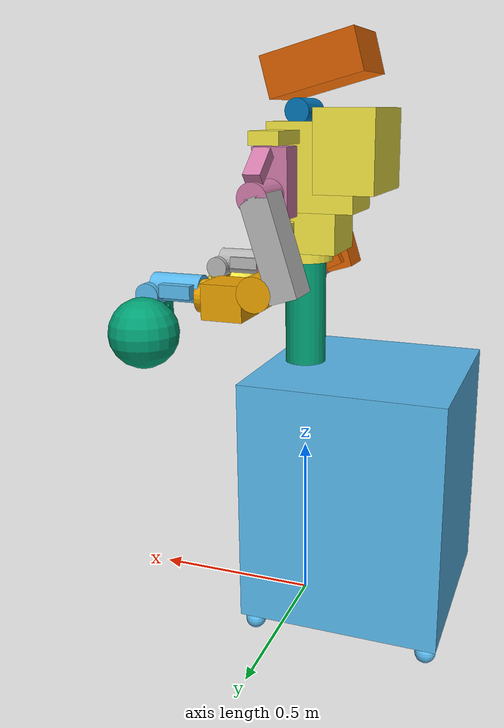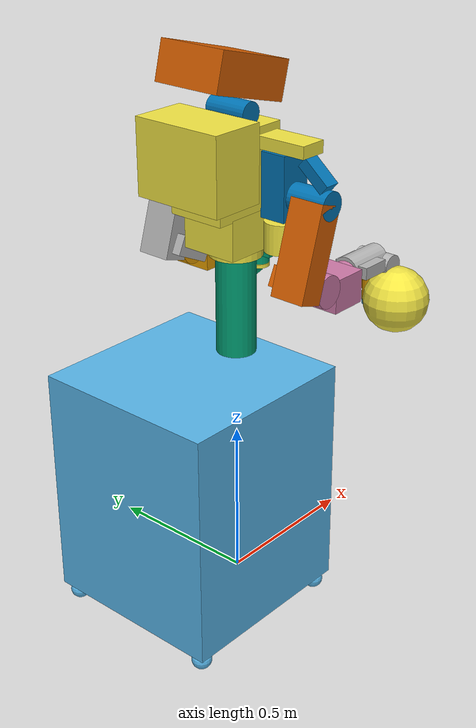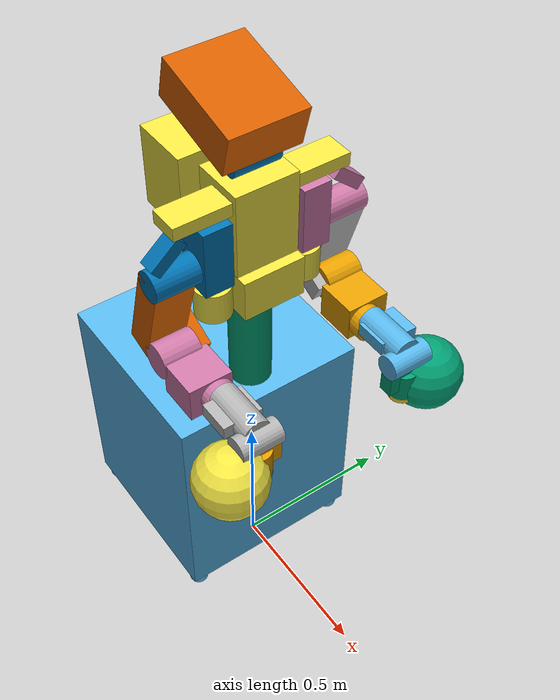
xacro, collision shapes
<?xml version="1.0"?>
<robot name="NextageAOpen"
       xmlns:xacro="http://www.ros.org/wiki/xacro">

  <xacro:property name="fixed_base" value="True" />
  <xacro:property name="ft_sensors" value="True" />
  <xacro:property name="hand_camera" value="True" />

  <xacro:include filename="$(find nextage_a_description)/urdf/NextageAOpen_gazebo.urdf.xacro" />

  <!-- Attach the Azure Kinect -->
  <joint name="kinct_mount_joint" type="fixed">
      <origin xyz="0.051 0.0 0.198" rpy="0.0 0.292 0.0" />
      <parent link="HEAD_JOINT1_Link"/>
      <child link="camera_base"/>
  </joint>
  <link name="camera_base"/>

</robot>

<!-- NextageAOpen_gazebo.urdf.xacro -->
<robot name="NextageAOpen"
       xmlns:xacro="http://www.ros.org/wiki/xacro">

  <xacro:property name="fixed_base" value="True" />

  <xacro:include filename="$(find nextage_a_description)/urdf/common.xacro" />
  <xacro:include filename="$(find nextage_a_description)/urdf/NextageAOpen.urdf.xacro" />

  <!-- Used for fixing robot to Gazebo 'base_link' -->
  <xacro:if value="${fixed_base}">
    <link name="world"/> -->
    <joint name="fixed" type="fixed">
      <parent link="world"/>
      <child link="base_link"/>
      <origin xyz="0 0 0.85" rpy="0 0 0"/>
    </joint>
  </xacro:if>

</robot>

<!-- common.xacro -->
<robot xmlns:xacro="http://ros.org/wiki/xacro">

    <xacro:property name="nextagea_common_guard" default="true"/>
    <xacro:if value="${nextagea_common_guard}">
        <xacro:property name="nextagea_common_guard" value="false"/>

        <!-- Inertia macros -->
        <xacro:macro name="nxa_sphere_inertia_def" params="radius mass">
            <inertia ixx="${2/5*mass*radius*radius}" ixy="0" ixz="0" iyy="${2/5*mass*radius*radius}" iyz="0" izz="${2/5*mass*radius*radius}"/>
        </xacro:macro>
        <xacro:macro name="nxa_box_inertia_def" params="x y z mass">
            <inertia iyy="${mass*(z*z+x*x)/12.0}" ixx="${mass*(y*y+z*z)/12.0}" izz="${mass*(x*x+y*y)/12.0}" ixy="0.0" iyz="0.0" ixz="0.0"/>
        </xacro:macro>
        <xacro:macro name="nxa_cylinder_inertia_def" params="r h mass">
            <inertia ixx="${mass*(3*r*r+h*h)/12}" ixy="0" ixz="0" iyy="${mass*(3*r*r+h*h)/12}" iyz="0" izz="${mass*r*r/2}"/>
        </xacro:macro>

        <xacro:macro name="transmission_nx_joint" params="name">
            <transmission name="${name}_Trans">
            <type>transmission_interface/SimpleTransmission</type>
            <joint name="${name}">
                <hardwareInterface>hardware_interface/PositionJointInterface</hardwareInterface>
            </joint>
            <actuator name="${name}_Motor">
                <hardwareInterface>hardware_interface/PositionJointInterface</hardwareInterface>
                <mechanicalReduction>1</mechanicalReduction>
            </actuator>
            </transmission>
        </xacro:macro>

        <!-- Define contact properties -->
        <xacro:macro name="gazebo_nx_link" params="name color">
            <gazebo reference="gazebo_${name}">
                <material>Gazebo/${color}</material>
                <mu1 value="1.0" />
                <mu2 value="1.0" />
                <kp  value="1e5" />
                <kd  value="1e2" />
                <maxVel  value="100.0" />
                <minDepth  value="0.0" />
                <dampingFactor>0.01</dampingFactor>
            </gazebo>
        </xacro:macro>

    </xacro:if>

    <xacro:macro name="sphere_inertia_def" params="radius mass">
        <inertia ixx="${2/5*mass*radius*radius}" ixy="0" ixz="0" iyy="${2/5*mass*radius*radius}" iyz="0" izz="${2/5*mass*radius*radius}"/>
    </xacro:macro>

</robot>

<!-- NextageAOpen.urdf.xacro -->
<robot name="NextageAOpen"
       xmlns:xi="http://www.w3.org/2001/xinclude"
       xmlns:gazebo="http://playerstage.sourceforge.net/gazebo/xmlschema/#gz"
       xmlns:model="http://playerstage.sourceforge.net/gazebo/xmlschema/#model"
       xmlns:sensor="http://playerstage.sourceforge.net/gazebo/xmlschema/#sensor"
       xmlns:body="http://playerstage.sourceforge.net/gazebo/xmlschema/#body"
       xmlns:geom="http://playerstage.sourceforge.net/gazebo/xmlschema/#geom"
       xmlns:joint="http://playerstage.sourceforge.net/gazebo/xmlschema/#joint"
       xmlns:interface="http://playerstage.sourceforge.net/gazebo/xmlschema/#interface"
       xmlns:rendering="http://playerstage.sourceforge.net/gazebo/xmlschema/#rendering"
       xmlns:renderable="http://playerstage.sourceforge.net/gazebo/xmlschema/#renderable"
       xmlns:controller="http://playerstage.sourceforge.net/gazebo/xmlschema/#controller"
       xmlns:physics="http://playerstage.sourceforge.net/gazebo/xmlschema/#physics"
       xmlns:xacro="http://www.ros.org/wiki/xacro">
  <xacro:include filename="$(find nextage_a_description)/urdf/materials.xacro" />
  <xacro:include filename="$(find nextage_a_description)/urdf/common.xacro" />

  <xacro:include filename="$(find nextage_a_description)/urdf/NextageA_base.xacro" />
  <xacro:include filename="$(find nextage_a_description)/urdf/NextageA_robot.xacro" />
  <xacro:include filename="$(find nextage_a_description)/urdf/nxao_gz_camera.xacro" />

  <xacro:arg name="use_hand_cameras" default="false"/>
  <xacro:arg name="use_ft_sensors" default="false"/>

  <xacro:macro name="nxao_camera" params="prefix parent">
    <xacro:if value="${prefix == 'L'}">
      <xacro:property name="m" value="+1" />
    </xacro:if>

    <xacro:if value="${prefix == 'R'}">
      <xacro:property name="m" value="-1" />
    </xacro:if>

    <xacro:gazebo_nx_link name="${prefix}ARM_camera_Link" color="Black" />
    <link name="${prefix}ARM_camera_Link">
      <visual>
        <origin xyz="0 0 0" rpy="0 0 0"/>
        <geometry>
          <mesh filename="package://nextage_a_description/urdf/meshes/${prefix}_CAM.dae"/>
        </geometry>
      </visual>
      <collision>
        <origin xyz="0 0 -0.025" rpy="0 0 0"/>
        <geometry>
          <cylinder length="0.05" radius="0.037"/>
        </geometry>
      </collision>
      <collision>
        <origin xyz="0.0525 ${m * 0.029} -0.02" rpy="0 0 0"/>
        <geometry>
          <box size="0.057 0.106 0.042"/>
        </geometry>
      </collision>
      <inertial>
        <mass value="1.05156" />
        <origin xyz="0.0 0.0 -0.08" rpy="0 -0 0"/>
        <inertia ixx="0.00194072" ixy="${m * 1.1e-07}" ixz="-0.00042482" iyy="0.00209392" iyz="${m * 1.2e-07}" izz="0.00035788"/>
      </inertial>
    </link>

    <joint name="${prefix}ARM_JOINT6" type="fixed">
      <parent link="${parent}"/>
      <child link="${prefix}ARM_camera_Link"/>
      <origin xyz="0 0 0" rpy="0 0 0"/>
      <axis xyz="0 0 1"/>
    </joint>

    <xacro:camera_joint_link_gzplugin
      camera_name="CAMERA_HAND_${prefix}" link_parent="${parent}"
      jnt_displacement_x="${jnt_hand_camera_displacement_x}"
      jnt_displacement_y="${m * jnt_hand_camera_displacement_y}"
      jnt_displacement_z="${jnt_hand_camera_displacement_z}"
      jnt_rotation_x="0" jnt_rotation_y="${jnt_hand_camera_rot_y}" jnt_rotation_z="0"
      link_displacement_x="0.0325" link_displacement_y="0" link_displacement_z="0"
      link_rotation_x="0" link_rotation_y="${M_PI/2}" link_rotation_z="-${link_hand_camera_rot_z}" />
  </xacro:macro>

  <xacro:macro name="nxao_ft_sensor" params="prefix parent">
    <xacro:if value="${prefix == 'L'}">
      <xacro:property name="m" value="+1" />
      <xacro:property name="ft_side" value="left" />
    </xacro:if>

    <xacro:if value="${prefix == 'R'}">
      <xacro:property name="m" value="-1" />
      <xacro:property name="ft_side" value="right" />
    </xacro:if>

    <xacro:gazebo_nx_link name="${prefix}ARM_ft_Link" color="LightGrey" />
    <link name="${prefix}ARM_ft_Link_base">
      <visual>
        <origin xyz="0 0 0.0185" rpy="0 0 0"/>
        <geometry>
          <cylinder length="0.037" radius="0.035"/>
        </geometry>
        <material name="LightGrey">
          <color rgba="0.6 0.6 0.6 1.0"/>
        </material>
      </visual>
      <collision>
        <origin xyz="0 0 0.0185" rpy="0 0 0"/>
        <geometry>
          <cylinder length="0.037" radius="0.04"/>
        </geometry>
      </collision>
      <!-- TODO: The inertial values are copied from ARM_JOINT5_Link. Replace with proper values. -->
      <inertial>
        <mass value="1.05156" />
        <origin xyz="0.0 0.0 -0.08" rpy="0 -0 0"/>
        <inertia ixx="0.00194072" ixy="1.1e-07" ixz="-0.00042482" iyy="0.00209392" iyz="1.2e-07" izz="0.00035788"/>
      </inertial>
    </link>

    <joint name="${prefix}ARM_ft_joint" type="fixed">
      <parent link="${parent}"/>
      <child link="${prefix}ARM_ft_Link_base"/>
      <origin xyz="0 0 -0.037" rpy="0 0 0"/>
      <axis xyz="0 0 1"/>
    </joint>

    <link name="${prefix}ARM_ft_Sensor_Link">
      <inertial>
        <mass value="0.0001" />
        <origin xyz="0 0 0" rpy="0 0 0"/>
        <xacro:nxa_sphere_inertia_def radius="0.0001" mass="0.0001"/>
      </inertial>
    </link>

    <link name="${prefix}ARM_ft_Link">
      <inertial>
        <mass value="0.0001" />
        <origin xyz="0 0 0" rpy="0 0 0"/>
        <xacro:nxa_sphere_inertia_def radius="0.0001" mass="0.0001"/>
      </inertial>
    </link>

    <joint name="${prefix}ARM_ft_sensor_joint" type="fixed">
      <parent link="${prefix}ARM_ft_Link_base"/>
      <child link="${prefix}ARM_ft_Sensor_Link"/>
      <origin xyz="0 0 0" rpy="0 3.1415 1.57"/>
      <axis xyz="0 0 1"/>
    </joint>

    <joint name="${prefix}ARM_ft_sensor_offset_joint" type="fixed">
      <parent link="${prefix}ARM_ft_Sensor_Link"/>
      <child link="${prefix}ARM_ft_Link"/>
      <origin xyz="0 0 0" rpy="0 3.1415 1.57"/>
      <axis xyz="0 0 1"/>
    </joint>

    <gazebo reference="${prefix}ARM_ft_sensor_joint">
      <disableFixedJointLumping>true</disableFixedJointLumping>
      <sensor name="${prefix}ARM_ft_sensor" type="force_torque">
        <force_torque>
          <frame>parent</frame>
          <measure_direction>child_to_parent</measure_direction>
        </force_torque>
      </sensor>
    </gazebo>
    <gazebo>
        <plugin name="${prefix}ARM_ft_sensor" filename="libgazebo_ros_ft_sensor.so">
            <updateRate>500.0</updateRate>
            <topicName>ft_${ft_side}/data</topicName>
            <jointName>${prefix}ARM_ft_sensor_joint</jointName>
        </plugin>
    </gazebo>

  </xacro:macro>

  <xacro:property name="arm_tip" value="ARM_JOINT5_Link" />

  <xacro:if value="$(arg use_ft_sensors)">
    <xacro:nxao_ft_sensor prefix="L" parent="L${arm_tip}" />
    <xacro:nxao_ft_sensor prefix="R" parent="R${arm_tip}" />
    <xacro:property name="arm_tip" value="ARM_ft_Link" />
  </xacro:if>

  <xacro:if value="$(arg use_hand_cameras)">
    <xacro:nxao_camera prefix="L" parent="L${arm_tip}" />
    <xacro:nxao_camera prefix="R" parent="R${arm_tip}" />
    <xacro:property name="arm_tip" value="ARM_camera_Link" />
  </xacro:if>

</robot>

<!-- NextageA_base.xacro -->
<robot xmlns:xacro="http://ros.org/wiki/xacro">

  <xacro:include filename="$(find nextage_a_description)/urdf/common.xacro" />

  <!-- Work-around for KDL base-link inertia problem; also adheres to ROS standard-->
  <link name="base_link"/>
  <joint name="base_to_dummy" type="fixed">
    <parent link="base_link"/>
    <child link="nextage_base"/>
  </joint>

  <link name="nextage_base">
    <visual>
      <origin xyz="0 0 0" rpy="0 0 0"/>
      <geometry>
	      <mesh filename="package://nextage_a_description/urdf/meshes/BASE_Link_mesh.dae"/>
      </geometry>
    </visual>
    <collision>
      <origin xyz="-0.19 0 -0.435" rpy="0 0 0"/>
      <geometry>
        <box size="0.585 0.585 0.72"/>
      </geometry>
    </collision>
    <collision>
      <origin xyz="0.0675 0.2575 -0.82" rpy="0 0 0"/>
      <geometry>
        <sphere radius="0.03"/>
      </geometry>
    </collision>
    <collision>
      <origin xyz="0.0675 -0.2575 -0.82" rpy="0 0 0"/>
      <geometry>
        <sphere radius="0.03"/>
      </geometry>
    </collision>
    <collision>
      <origin xyz="-0.4475 0.2575 -0.82" rpy="0 0 0"/>
      <geometry>
        <sphere radius="0.03"/>
      </geometry>
    </collision>
    <collision>
      <origin xyz="-0.4475 -0.2575 -0.82" rpy="0 0 0"/>
      <geometry>
        <sphere radius="0.03"/>
      </geometry>
    </collision>
    <inertial>
      <mass value="40" />
      <origin xyz="-0.19 0 -0.435" rpy="0 0 0"/>
      <xacro:nxa_box_inertia_def x="0.585" y="0.585" z="0.72" mass="40"/>
    </inertial>
  </link>
  <joint name="base_to_waist" type="fixed">
    <parent link="nextage_base"/>
    <child link="WAIST"/>
  </joint>

</robot>

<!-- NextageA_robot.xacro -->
<robot xmlns:xacro="http://ros.org/wiki/xacro" name="nextage_a">

  <xacro:include filename="$(find nextage_a_description)/urdf/common.xacro" />

  <xacro:property name="namespace" default="/nextagea/" />
  <xacro:property name="nextagea_gazebo_ros_control" default="true" />

  <xacro:gazebo_nx_link name="WAIST" color="Black" />
  <link name="WAIST">
    <visual>
      <origin xyz="0 0 0" rpy="0 0 0"/>
      <geometry>
	      <mesh filename="package://nextage_a_description/urdf/meshes/WAIST_Link_mesh.dae"/>
      </geometry>
    </visual>
    <collision>
      <origin xyz="0.0 0 0.098" rpy="0 0 0"/>
      <geometry>
        <cylinder length="0.376" radius="0.06"/>
      </geometry>
    </collision>
    <inertial>
      <mass value="5" />
      <origin xyz="0 0 0.15" rpy="0 0 0"/>
      <xacro:nxa_box_inertia_def x="0.2" y="0.2" z="0.3" mass="5"/>
    </inertial>
  </link>

  <xacro:gazebo_nx_link name="CHEST_JOINT0_Link" color="Black" />
  <link name="CHEST_JOINT0_Link">
    <visual>
      <origin xyz="0 0 0" rpy="0 0 0"/>
      <geometry>
	      <mesh filename="package://nextage_a_description/urdf/meshes/CHEST_JOINT0_Link_mesh.dae"/>
      </geometry>
    </visual>
    <collision>
      <origin xyz="0 0 0.1575" rpy="0 0 0"/>
      <geometry>
        <cylinder length="0.385" radius="0.08"/>
      </geometry>
    </collision>
    <collision>
      <origin xyz="0.04 0.135 0.0423" rpy="0 0 0"/>
      <geometry>
        <cylinder length="0.09" radius="0.05"/>
      </geometry>
    </collision>
    <collision>
      <origin xyz="0.04 -0.135 0.0423" rpy="0 0 0"/>
      <geometry>
        <cylinder length="0.09" radius="0.05"/>
      </geometry>
    </collision>
    <collision>
      <origin xyz="0 0 0.055" rpy="0 0 0"/>
      <geometry>
        <box size="0.23 0.18 0.12"/>
      </geometry>
    </collision>
    <collision>
      <origin xyz="-0.04 0 0.2325" rpy="0 0 0"/>
      <geometry>
        <box size="0.25 0.18 0.245"/>
      </geometry>
    </collision>
    <collision>
      <origin xyz="-0.1525 0 0.279" rpy="0 0 0"/>
      <geometry>
        <box size="0.17 0.29 0.225"/>
      </geometry>
    </collision>
    <collision>
      <origin xyz="0.03 0 0.315" rpy="0 0 0"/>
      <geometry>
        <box size="0.085 0.5 0.0365"/>
      </geometry>
    </collision>
    <inertial>
      <mass value="10.0" />
      <origin xyz="0 0 0.2" rpy="0 -0 0"/>
      <xacro:nxa_box_inertia_def x="0.25" y="0.25" z="0.3" mass="10"/>
    </inertial>
  </link>

  <xacro:gazebo_nx_link name="HEAD_JOINT0_Link" color="Black" />
  <link name="HEAD_JOINT0_Link">
    <visual>
      <origin xyz="0 0 0" rpy="0 0 0"/>
      <geometry>
	      <mesh filename="package://nextage_a_description/urdf/meshes/HEAD_JOINT0_Link_mesh.dae"/>
      </geometry>
    </visual>
    <collision>
      <origin xyz="0 0.01 0.08" rpy="1.57079 0 0"/>
      <geometry>
        <cylinder length="0.135" radius="0.035"/>
      </geometry>
    </collision>
     <inertial>
      <mass value="0.317929" />
      <origin xyz="0 0.00547848 0" rpy="0 -0 0"/>
      <xacro:nxa_box_inertia_def x="0.1" y="0.1" z="0.1" mass="0.317929"/>
    </inertial>
  </link>

  <xacro:gazebo_nx_link name="HEAD_JOINT1_Link" color="Black" />
  <link name="HEAD_JOINT1_Link">
    <visual>
      <origin xyz="0 0 0" rpy="0 0 0"/>
      <geometry>
	      <mesh filename="package://nextage_a_description/urdf/meshes/HEAD_JOINT1_Link_mesh.dae"/>
      </geometry>
    </visual>
    <collision>
      <origin xyz="-0.05 0 0.12" rpy="0 0.26 0"/>
      <geometry>
        <box size="0.27 0.22 0.115"/>
      </geometry>
    </collision>
    <inertial>
      <mass value="0.4" />
      <origin xyz="-0.05 0 0.12" rpy="0 0.26 0"/>
      <xacro:nxa_box_inertia_def x="0.27" y="0.22" z="0.115" mass="0.4"/>
    </inertial>
  </link>

  <xacro:gazebo_nx_link name="LARM_JOINT0_Link" color="Black" />
  <link name="LARM_JOINT0_Link">
    <visual>
      <origin xyz="0 0 0" rpy="0 0 0"/>
      <geometry>
	      <mesh filename="package://nextage_a_description/urdf/meshes/LARM_JOINT0_Link_mesh.dae"/>
      </geometry>
    </visual>
    <collision>
      <origin xyz="0 0.00775 0.095" rpy="0 0 0"/>
      <geometry>
        <box size="0.1 0.0815 0.19"/>
      </geometry>
    </collision>
    <collision>
      <origin xyz="0 0.0875 0.066" rpy="1.57079 0 0"/>
      <geometry>
        <cylinder length="0.175" radius="0.042"/>
      </geometry>
    </collision>
    <collision>
      <origin xyz="0 0.125 0.145" rpy="-0.7 0 0"/>
      <geometry>
        <box size="0.048 0.1 0.035"/>
      </geometry>
    </collision>
    <inertial>
      <mass value="1.32626" />
      <origin xyz="0.0 0.05 0.05" rpy="0 -0 0"/>
      <inertia ixx="0.00207537" ixy="0.00011276" ixz="8.927e-05" iyy="0.00240295" iyz="-4.57e-05" izz="0.00141912"/>
    </inertial>
  </link>

  <xacro:gazebo_nx_link name="LARM_JOINT1_Link" color="Black" />
  <link name="LARM_JOINT1_Link">
    <visual>
      <origin xyz="0 0 0" rpy="0 0 0"/>
      <geometry>
	      <mesh filename="package://nextage_a_description/urdf/meshes/LARM_JOINT1_Link_mesh.dae"/>
      </geometry>
    </visual>
    <collision>
      <origin xyz="-0.043 0.12 -0.13" rpy="0 0.3 0"/>
      <geometry>
        <box size="0.08 0.11 0.28"/>
      </geometry>
    </collision>
    <collision>
      <origin xyz="-0.03 0.0518 -0.236" rpy="0 0.45 0"/>
      <geometry>
        <box size="0.122 0.0338 0.062"/>
      </geometry>
    </collision>
     <inertial>
      <mass value="1.14898" />
      <origin xyz="-0.04 0.1 -0.12" rpy="0 -0 0"/>
      <inertia ixx="0.0154168" ixy="9.95417e-07" ixz="3.38147e-06" iyy="0.0147117" iyz="0.00213719" izz="0.0012658"/>
    </inertial>
  </link>

  <xacro:gazebo_nx_link name="LARM_JOINT2_Link" color="Black" />
  <link name="LARM_JOINT2_Link">
    <visual>
      <origin xyz="0 0 0" rpy="0 0 0"/>
      <geometry>
	      <mesh filename="package://nextage_a_description/urdf/meshes/LARM_JOINT2_Link_mesh.dae"/>
      </geometry>
    </visual>
    <collision>
      <origin xyz="0 0.025 0" rpy="1.57079 0 0"/>
      <geometry>
        <cylinder length="0.11" radius="0.049"/>
      </geometry>
    </collision>
    <collision>
      <origin xyz="0.0945 0.015 -0.03" rpy="0 0 0"/>
      <geometry>
        <box size="0.119 0.125 0.1"/>
      </geometry>
    </collision>
    <collision>
      <origin xyz="0.17 0 -0.03" rpy="0 1.57079 0"/>
      <geometry>
        <cylinder length="0.04" radius="0.047"/>
      </geometry>
    </collision>
    <inertial>
      <mass value="0.577518" />
      <origin xyz="0.1 0.01167107 -0.04" rpy="0 -0 0"/>
      <inertia ixx="0.00143966" ixy="-3e-07" ixz="1.2e-06" iyy="0.00141763" iyz="-7.596e-05" izz="0.0001972"/>
    </inertial>
  </link>

  <xacro:gazebo_nx_link name="LARM_JOINT3_Link" color="Black" />
  <link name="LARM_JOINT3_Link">
    <visual>
      <origin xyz="0 0 0" rpy="0 0 0"/>
      <geometry>
	      <mesh filename="package://nextage_a_description/urdf/meshes/LARM_JOINT3_Link_mesh.dae"/>
      </geometry>
    </visual>
    <collision>
      <origin xyz="0.1495 -0.003 0" rpy="1.57079 0 0"/>
      <geometry>
        <cylinder length="0.12" radius="0.035"/>
      </geometry>
    </collision>
    <collision>
      <origin xyz="0.075 0.0 0.018" rpy="0 1.57079 0"/>
      <geometry>
        <cylinder length="0.15" radius="0.04"/>
      </geometry>
    </collision>
    <collision>
      <origin xyz="0.0585 0.01 0.0185" rpy="0 0 0"/>
      <geometry>
        <box size="0.093 0.112 0.037"/>
      </geometry>
    </collision>
    <inertial>
      <mass value="0.457418" />
      <origin xyz="0.1 -0.00395812 -0.00273" rpy="0 -0 0"/>
      <inertia ixx="0.00069205" ixy="3e-08" ixz="5.2e-07" iyy="0.00068903" iyz="-1.915e-05" izz="0.00013509"/>
    </inertial>
  </link>

  <xacro:gazebo_nx_link name="LARM_JOINT4_Link" color="Black" />
  <link name="LARM_JOINT4_Link">
    <visual>
      <origin xyz="0 0 0" rpy="0 0 0"/>
      <geometry>
	      <mesh filename="package://nextage_a_description/urdf/meshes/LARM_JOINT4_Link_mesh.dae"/>
      </geometry>
    </visual>
    <collision>
      <origin xyz="0 -0.002 -0.06" rpy="0 0 0"/>
      <geometry>
        <box size="0.04 0.118 0.06"/>
      </geometry>
    </collision>
    <collision>
      <origin xyz="0 0 -0.08" rpy="0 0 0"/>
      <geometry>
        <cylinder length="0.08" radius="0.037"/>
      </geometry>
    </collision>
    <inertial>
      <mass value="0.418434" />
      <origin xyz="0.00243131 0.00379733 -0.0577036" rpy="0 -0 0"/>
      <inertia ixx="0.00052016" ixy="1.69e-06" ixz="7.9e-06" iyy="0.00050569" iyz="-5.377e-05" izz="0.00014004"/>
    </inertial>
  </link>

  <xacro:gazebo_nx_link name="LARM_JOINT5_Link" color="Black" />
  <link name="LARM_JOINT5_Link">
    <visual>
      <origin xyz="0 0 0" rpy="0 0 0"/>
      <geometry>
	      <mesh filename="package://nextage_a_description/urdf/meshes/LARM_JOINT5_Link_mesh.dae"/>
      </geometry>
    </visual>
    <collision>
      <origin xyz="0 0 0.0065" rpy="0 0 0"/>
      <geometry>
        <cylinder length="0.013" radius="0.037"/>
      </geometry>
    </collision>
    <inertial>
      <mass value="1.05156" />
      <origin xyz="0.0 0.0 -0.08" rpy="0 -0 0"/>
      <inertia ixx="0.00194072" ixy="1.1e-07" ixz="-0.00042482" iyy="0.00209392" iyz="1.2e-07" izz="0.00035788"/>
    </inertial>
  </link>

  <xacro:gazebo_nx_link name="RARM_JOINT0_Link" color="Black" />
  <link name="RARM_JOINT0_Link">
    <visual>
      <origin xyz="0 0 0" rpy="0 0 0"/>
      <geometry>
	      <mesh filename="package://nextage_a_description/urdf/meshes/RARM_JOINT0_Link_mesh.dae"/>
      </geometry>
    </visual>
    <collision>
      <origin xyz="0 -0.00775 0.095" rpy="0 0 0"/>
      <geometry>
        <box size="0.1 0.0815 0.19"/>
      </geometry>
    </collision>
    <collision>
      <origin xyz="0 -0.0875 0.066" rpy="1.57079 0 0"/>
      <geometry>
        <cylinder length="0.175" radius="0.042"/>
      </geometry>
    </collision>
    <collision>
      <origin xyz="0 -0.125 0.145" rpy="0.7 0 0"/>
      <geometry>
        <box size="0.048 0.1 0.035"/>
      </geometry>
    </collision>
    <inertial>
      <mass value="1.32626" />
      <origin xyz="0.0 -0.05 0.05" rpy="0 -0 0"/>
      <inertia ixx="0.00207537" ixy="-0.00011276" ixz="8.927e-05" iyy="0.00240295" iyz="4.57e-05" izz="0.00141912"/>
    </inertial>
  </link>

  <xacro:gazebo_nx_link name="RARM_JOINT1_Link" color="Black" />
  <link name="RARM_JOINT1_Link">
    <visual>
      <origin xyz="0 0 0" rpy="0 0 0"/>
      <geometry>
	      <mesh filename="package://nextage_a_description/urdf/meshes/RARM_JOINT1_Link_mesh.dae"/>
      </geometry>
    </visual>
    <collision>
      <origin xyz="-0.043 -0.12 -0.13" rpy="0 0.3 0"/>
      <geometry>
        <box size="0.08 0.11 0.28"/>
      </geometry>
    </collision>
    <collision>
      <origin xyz="-0.03 -0.0518 -0.236" rpy="0 0.45 0"/>
      <geometry>
        <box size="0.122 0.0338 0.062"/>
      </geometry>
    </collision>
    <inertial>
      <mass value="1.14898" />
      <origin xyz="-0.04 -0.1 -0.12" rpy="0 -0 0"/>
      <inertia ixx="0.0154168" ixy="-9.95417e-07" ixz="3.38147e-06" iyy="0.0147117" iyz="-0.00213719" izz="0.0012658"/>
    </inertial>
  </link>

  <xacro:gazebo_nx_link name="RARM_JOINT2_Link" color="Black" />
  <link name="RARM_JOINT2_Link">
    <visual>
      <origin xyz="0 0 0" rpy="0 0 0"/>
      <geometry>
	      <mesh filename="package://nextage_a_description/urdf/meshes/RARM_JOINT2_Link_mesh.dae"/>
      </geometry>
    </visual>
    <collision>
      <origin xyz="0 -0.025 0" rpy="1.57079 0 0"/>
      <geometry>
        <cylinder length="0.11" radius="0.049"/>
      </geometry>
    </collision>
    <collision>
      <origin xyz="0.0945 -0.015 -0.03" rpy="0 0 0"/>
      <geometry>
        <box size="0.119 0.125 0.1"/>
      </geometry>
    </collision>
    <collision>
      <origin xyz="0.17 0 -0.03" rpy="0 1.57079 0"/>
      <geometry>
        <cylinder length="0.04" radius="0.047"/>
      </geometry>
    </collision>
    <inertial>
      <mass value="0.577518" />
      <origin xyz="0.1 -0.01167107 -0.04" rpy="0 -0 0"/>
      <inertia ixx="0.00143966" ixy="3e-07" ixz="1.2e-06" iyy="0.00141763" iyz="7.596e-05" izz="0.0001972"/>
    </inertial>
  </link>

  <xacro:gazebo_nx_link name="RARM_JOINT3_Link" color="Black" />
  <link name="RARM_JOINT3_Link">
    <visual>
      <origin xyz="0 0 0" rpy="0 0 0"/>
      <geometry>
	      <mesh filename="package://nextage_a_description/urdf/meshes/RARM_JOINT3_Link_mesh.dae"/>
      </geometry>
    </visual>
    <collision>
      <origin xyz="0.1495 -0.003 0" rpy="1.57079 0 0"/>
      <geometry>
        <cylinder length="0.12" radius="0.035"/>
      </geometry>
    </collision>
    <collision>
      <origin xyz="0.075 0.0 0.018" rpy="0 1.57079 0"/>
      <geometry>
        <cylinder length="0.15" radius="0.04"/>
      </geometry>
    </collision>
    <collision>
      <origin xyz="0.0585 -0.01 0.0185" rpy="0 0 0"/>
      <geometry>
        <box size="0.093 0.112 0.037"/>
      </geometry>
    </collision>
    <inertial>
      <mass value="0.457418" />
      <origin xyz="0.1 0.00395812 -0.00273" rpy="0 -0 0"/>
      <inertia ixx="0.00069205" ixy="-3e-08" ixz="5.2e-07" iyy="0.00068903" iyz="1.915e-05" izz="0.00013509"/>
    </inertial>
  </link>

  <xacro:gazebo_nx_link name="RARM_JOINT4_Link" color="Black" />
  <link name="RARM_JOINT4_Link">
    <visual>
      <origin xyz="0 0 0" rpy="0 0 0"/>
      <geometry>
	      <mesh filename="package://nextage_a_description/urdf/meshes/RARM_JOINT4_Link_mesh.dae"/>
      </geometry>
    </visual>
    <collision>
      <origin xyz="0 -0.002 -0.06" rpy="0 0 0"/>
      <geometry>
        <box size="0.04 0.118 0.06"/>
      </geometry>
    </collision>
    <collision>
      <origin xyz="0 0 -0.08" rpy="0 0 0"/>
      <geometry>
        <cylinder length="0.08" radius="0.037"/>
      </geometry>
    </collision>
    <inertial>
      <mass value="0.418434" />
      <origin xyz="0.00243131 -0.00379733 -0.0577036" rpy="0 -0 0"/>
      <inertia ixx="0.00052016" ixy="-1.69e-06" ixz="7.9e-06" iyy="0.00050569" iyz="5.377e-05" izz="0.00014004"/>
    </inertial>
  </link>

  <xacro:gazebo_nx_link name="RARM_JOINT5_Link" color="Black" />
  <link name="RARM_JOINT5_Link">
    <visual>
      <origin xyz="0 0 0" rpy="0 0 0"/>
      <geometry>
	      <mesh filename="package://nextage_a_description/urdf/meshes/RARM_JOINT5_Link_mesh.dae"/>
      </geometry>
    </visual>
    <collision>
      <origin xyz="0 0 0.0065" rpy="0 0 0"/>
      <geometry>
        <cylinder length="0.013" radius="0.037"/>
      </geometry>
    </collision>
    <inertial>
      <mass value="1.05156" />
      <origin xyz="0.0 0.0 -0.08" rpy="0 -0 0"/>
      <inertia ixx="0.00194072" ixy="-1.1e-07" ixz="-0.00042482" iyy="0.00209392" iyz="-1.2e-07" izz="0.00035788"/>
    </inertial>
  </link>

  <xacro:transmission_nx_joint name="CHEST_JOINT0" />
  <joint name="CHEST_JOINT0" type="revolute">
    <parent link="WAIST"/>
    <child link="CHEST_JOINT0_Link"/>
    <origin xyz="0 0 0.267" rpy="0 0 0"/>
    <axis xyz="0 0 1"/>
    <limit lower="-3.14159" upper="3.14159" effort="100" velocity="2.513274"/>
    <dynamics damping="0.2" friction="0"/>
  </joint>

  <xacro:transmission_nx_joint name="HEAD_JOINT0" />
  <joint name="HEAD_JOINT0" type="revolute">
    <parent link="CHEST_JOINT0_Link"/>
    <child link="HEAD_JOINT0_Link"/>
    <origin xyz="0 0 0.302" rpy="0 0 0"/>
    <axis xyz="0 0 1"/>
    <limit lower="-1.22173" upper="1.22173" effort="100" velocity="6.684611"/>
  </joint>

  <xacro:transmission_nx_joint name="HEAD_JOINT1" />
  <joint name="HEAD_JOINT1" type="revolute">
    <parent link="HEAD_JOINT0_Link"/>
    <child link="HEAD_JOINT1_Link"/>
    <origin xyz="0 0 0.08" rpy="0 0 0"/>
    <axis xyz="0 1 0"/>
    <limit lower="-0.401425" upper="1.308997" effort="100" velocity="6.684611"/>
  </joint>

  <xacro:transmission_nx_joint name="LARM_JOINT0" />
  <joint name="LARM_JOINT0" type="revolute">
    <parent link="CHEST_JOINT0_Link"/>
    <child link="LARM_JOINT0_Link"/>
    <origin xyz="0.04 0.135 0.1015" rpy="0 0 0"/>
    <axis xyz="0 0 1"/>
    <limit lower="-1.5707963" upper="1.5707963" effort="150" velocity="3.892084"/>
    <dynamics damping="0.5" friction="0.5"/>
  </joint>

  <xacro:transmission_nx_joint name="LARM_JOINT1" />
  <joint name="LARM_JOINT1" type="revolute">
    <parent link="LARM_JOINT0_Link"/>
    <child link="LARM_JOINT1_Link"/>
    <origin xyz="0 0 0.066" rpy="0 0 0"/>
    <axis xyz="0 1 0"/>
    <limit lower="-2.44346" upper="1.0471975" effort="150" velocity="2.426008"/>
    <dynamics damping="0.5" friction="0.5"/>
  </joint>

  <xacro:transmission_nx_joint name="LARM_JOINT2" />
  <joint name="LARM_JOINT2" type="revolute">
    <parent link="LARM_JOINT1_Link"/>
    <child link="LARM_JOINT2_Link"/>
    <origin xyz="0 0.095 -0.25" rpy="0 0 0"/>
    <axis xyz="0 1 0"/>
    <limit lower="-1.22173" upper="1.5707963" effort="150" velocity="3.630285"/>
    <dynamics damping="0.5" friction="0.5"/>
  </joint>

  <xacro:transmission_nx_joint name="LARM_JOINT3" />
  <joint name="LARM_JOINT3" type="revolute">
    <parent link="LARM_JOINT2_Link"/>
    <child link="LARM_JOINT3_Link"/>
    <origin xyz="0.1805 0 -0.03" rpy="0 0 0"/>
    <axis xyz="1 0 0"/>
    <limit lower="-3.1415926" upper="1.7453292" effort="150" velocity="6.352998"/>
    <dynamics damping="0.5" friction="0.5"/>
  </joint>

  <xacro:transmission_nx_joint name="LARM_JOINT4" />
  <joint name="LARM_JOINT4" type="revolute">
    <parent link="LARM_JOINT3_Link"/>
    <child link="LARM_JOINT4_Link"/>
    <origin xyz="0.1495 0 0" rpy="0 0 0"/>
    <axis xyz="0 1 0"/>
    <limit lower="-2.9" upper="1.134464" effort="150" velocity="6.352998"/>
    <dynamics damping="0.5" friction="0.5"/>
  </joint>

  <xacro:transmission_nx_joint name="LARM_JOINT5" />
  <joint name="LARM_JOINT5" type="revolute">
    <parent link="LARM_JOINT4_Link"/>
    <child link="LARM_JOINT5_Link"/>
    <origin xyz="0 0 -0.1335" rpy="0 0 0"/>
    <axis xyz="0 0 1"/>
    <limit lower="-2.7123889" upper="2.7123889" effort="150" velocity="6.352998"/>
    <dynamics damping="0.5" friction="0.5"/>
  </joint>

  <xacro:transmission_nx_joint name="RARM_JOINT0" />
  <joint name="RARM_JOINT0" type="revolute">
    <parent link="CHEST_JOINT0_Link"/>
    <child link="RARM_JOINT0_Link"/>
    <origin xyz="0.04 -0.135 0.1015" rpy="0 0 0"/>
    <axis xyz="0 0 1"/>
    <limit lower="-1.570796" upper="1.570796" effort="150" velocity="3.892084"/>
    <dynamics damping="0.5" friction="0.5"/>
  </joint>

  <xacro:transmission_nx_joint name="RARM_JOINT1" />
  <joint name="RARM_JOINT1" type="revolute">
    <parent link="RARM_JOINT0_Link"/>
    <child link="RARM_JOINT1_Link"/>
    <origin xyz="0 0 0.066" rpy="0 0 0"/>
    <axis xyz="0 1 0"/>
    <limit lower="-2.44346" upper="1.047197" effort="150" velocity="2.426008"/>
    <dynamics damping="0.5" friction="0.5"/>
  </joint>

  <xacro:transmission_nx_joint name="RARM_JOINT2" />
  <joint name="RARM_JOINT2" type="revolute">
    <parent link="RARM_JOINT1_Link"/>
    <child link="RARM_JOINT2_Link"/>
    <origin xyz="0 -0.095 -0.25" rpy="0 0 0"/>
    <axis xyz="0 1 0"/>
    <limit lower="-1.22173" upper="1.570796" effort="150" velocity="3.630285"/>
    <dynamics damping="0.5" friction="0.5"/>
  </joint>

  <xacro:transmission_nx_joint name="RARM_JOINT3" />
  <joint name="RARM_JOINT3" type="revolute">
    <parent link="RARM_JOINT2_Link"/>
    <child link="RARM_JOINT3_Link"/>
    <origin xyz="0.1805 0 -0.03" rpy="0 0 0"/>
    <axis xyz="1 0 0"/>
    <limit lower="-1.74532" upper="3.141592" effort="150" velocity="6.352998"/>
    <dynamics damping="0.5" friction="0.5"/>
  </joint>

  <xacro:transmission_nx_joint name="RARM_JOINT4" />
  <joint name="RARM_JOINT4" type="revolute">
    <parent link="RARM_JOINT3_Link"/>
    <child link="RARM_JOINT4_Link"/>
    <origin xyz="0.1495 0 0" rpy="0 0 0"/>
    <axis xyz="0 1 0"/>
    <limit lower="-2.9" upper="1.134464" effort="150" velocity="6.352998"/>
    <dynamics damping="0.5" friction="0.5"/>
  </joint>

  <xacro:transmission_nx_joint name="RARM_JOINT5" />
  <joint name="RARM_JOINT5" type="revolute">
    <parent link="RARM_JOINT4_Link"/>
    <child link="RARM_JOINT5_Link"/>
    <origin xyz="0 0 -0.1335" rpy="0 0 0"/>
    <axis xyz="0 0 1"/>
    <limit lower="-2.712388" upper="2.712388" effort="150" velocity="6.352998"/>
    <dynamics damping="0.5" friction="0.5"/>
  </joint>

  <!-- Gazebo plugin for ROS Control -->
  <xacro:if value="${nextagea_gazebo_ros_control}">
    <gazebo>
      <plugin name="gazebo_ros_control" filename="libgazebo_ros_control.so">
        <robotNamespace>${namespace}</robotNamespace>
        <eStopTopic>nextagea_hw/soft_estop</eStopTopic>
      </plugin>
    </gazebo>
  </xacro:if>

  <!-- Gazebo-Specific Link Properties -->
  <gazebo reference="CHEST_JOINT0">
    <implicitSpringDamper>1</implicitSpringDamper>
  </gazebo>
  <gazebo reference="HEAD_JOINT0">
    <implicitSpringDamper>1</implicitSpringDamper>
  </gazebo>
  <gazebo reference="HEAD_JOINT1">
    <implicitSpringDamper>1</implicitSpringDamper>
  </gazebo>
  <gazebo reference="LARM_JOINT0">
    <implicitSpringDamper>1</implicitSpringDamper>
  </gazebo>
  <gazebo reference="LARM_JOINT1">
    <implicitSpringDamper>1</implicitSpringDamper>
  </gazebo>
  <gazebo reference="LARM_JOINT2">
    <implicitSpringDamper>1</implicitSpringDamper>
  </gazebo>
  <gazebo reference="LARM_JOINT3">
    <implicitSpringDamper>1</implicitSpringDamper>
  </gazebo>
  <gazebo reference="LARM_JOINT4">
    <implicitSpringDamper>1</implicitSpringDamper>
  </gazebo>
  <gazebo reference="LARM_JOINT5">
    <implicitSpringDamper>1</implicitSpringDamper>
  </gazebo>
  <gazebo reference="RARM_JOINT0">
    <implicitSpringDamper>1</implicitSpringDamper>
  </gazebo>
  <gazebo reference="RARM_JOINT1">
    <implicitSpringDamper>1</implicitSpringDamper>
  </gazebo>
  <gazebo reference="RARM_JOINT2">
    <implicitSpringDamper>1</implicitSpringDamper>
  </gazebo>
  <gazebo reference="RARM_JOINT3">
    <implicitSpringDamper>1</implicitSpringDamper>
  </gazebo>
  <gazebo reference="RARM_JOINT4">
    <implicitSpringDamper>1</implicitSpringDamper>
  </gazebo>
  <gazebo reference="RARM_JOINT5">
    <implicitSpringDamper>1</implicitSpringDamper>
  </gazebo>

  <joint name="LARM_JOINT4_Link_cables_joint" type="fixed">
    <parent link="LARM_JOINT4_Link"/>
    <child link="LARM_JOINT4_Link_cables"/>
    <origin xyz="0 0 0" rpy="0 0 0"/>
    <axis xyz="0 0 1"/>
  </joint>

  <joint name="RARM_JOINT4_Link_cables_joint" type="fixed">
    <parent link="RARM_JOINT4_Link"/>
    <child link="RARM_JOINT4_Link_cables"/>
    <origin xyz="0 0 0" rpy="0 0 0"/>
    <axis xyz="0 0 1"/>
  </joint>

  <link name="LARM_JOINT4_Link_cables">
    <inertial>
      <mass value="0.01" />
      <origin xyz="0 0 0" rpy="0 0 0"/>
      <xacro:nxa_box_inertia_def x="0.016" y="0.006" z="0.012" mass="0.01"/>
    </inertial>

    <collision>
      <origin xyz="0 0.08 -0.1" rpy="0 0 0"/>
      <geometry>
        <sphere radius="0.1"/>
      </geometry>
    </collision>
  </link>

  <link name="RARM_JOINT4_Link_cables">
    <inertial>
      <mass value="0.01" />
      <origin xyz="0 0 0" rpy="0 0 0"/>
      <xacro:nxa_box_inertia_def x="0.016" y="0.006" z="0.012" mass="0.01"/>
    </inertial>

    <collision>
      <origin xyz="0 -0.08 -0.1" rpy="0 0 0"/>
      <geometry>
        <sphere radius="0.1"/>
      </geometry>
    </collision>
  </link>

</robot>

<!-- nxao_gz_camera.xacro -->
<robot xmlns:xacro="http://www.ros.org/wiki/xacro">
	<xacro:property name="M_PI" value="3.1415926535897931" />

	<!-- Adding camera for simulation -->
	<xacro:macro name="camera_joint_link_gzplugin"
		params="camera_name link_parent jnt_displacement_x jnt_displacement_y jnt_displacement_z jnt_rotation_x jnt_rotation_y jnt_rotation_z link_displacement_x link_displacement_y link_displacement_z link_rotation_x link_rotation_y link_rotation_z">
		<joint name="${camera_name}" type="fixed">
			<origin
				xyz="${jnt_displacement_x} ${jnt_displacement_y} ${jnt_displacement_z}"
				rpy="${jnt_rotation_x} ${jnt_rotation_y} ${jnt_rotation_z}" />
			<parent link="${link_parent}" />
			<child link="${camera_name}_Link" />
		</joint>
		<link name="${camera_name}_Link">
			<visual>
				<origin
					xyz="${link_displacement_x} ${link_displacement_y} ${link_displacement_z}"
					rpy="${link_rotation_x} ${link_rotation_y} ${link_rotation_z}" />
				<geometry>
					<cylinder length="0.01" radius="0.015" />
				</geometry>
				<material name="Blue" />
			</visual>
			<inertial>
				<origin xyz="0 0 0" rpy="0 0 0" />
				<mass value="1e-6" />
				<inertia ixx="1e-12" ixy="0.0" ixz="0.0" iyy="1e-12" iyz="0.0"
					izz="1e-12" />
			</inertial>
		</link>
		<gazebo reference="${camera_name}_Link">
			<sensor type="camera" name="${camera_name}">
				<update_rate>30.0</update_rate>
				<camera name="${camera_name}">
					<horizontal_fov>1.3962634</horizontal_fov>
					<image>
						<width>800</width>
						<height>800</height>
						<format>R8G8B8</format>
					</image>
					<clip>
						<near>0.1</near>
						<far>30</far>
					</clip>
					<noise>
						<type>gaussian</type>
						<!-- Noise is sampled independently per pixel on each frame. That pixel's
							noise value is added to each of its color channels, which at that point lie
							in the range [0,1]. -->
						<mean>0.0</mean>
						<stddev>0.007</stddev>
					</noise>
				</camera>
				<plugin name="camera_controller" filename="libgazebo_ros_camera.so">
					<alwaysOn>true</alwaysOn>
					<updateRate>0.0</updateRate>
					<cameraName>${camera_name}</cameraName>
					<imageTopicName>image_raw</imageTopicName>
					<cameraInfoTopicName>camera_info</cameraInfoTopicName>
					<frameName>${camera_name}_Link_frame</frameName>
					<hackBaseline>0.07</hackBaseline>
					<distortionK1>0.0</distortionK1>
					<distortionK2>0.0</distortionK2>
					<distortionK3>0.0</distortionK3>
					<distortionT1>0.0</distortionT1>
					<distortionT2>0.0</distortionT2>
				</plugin>
			</sensor>
		</gazebo>
	</xacro:macro>

	<xacro:property name="M_PI" value="3.1415926535897931" />
	<xacro:property name="jnt_head_camera_displacement_x" value="0.0175" />
	<xacro:property name="jnt_head_camera_displacement_y" value="0.0725" />
	<xacro:property name="jnt_head_camera_displacement_z" value="0.105" />
	<xacro:property name="jnt_head_camera_rot_y" value="0.25" />
	<xacro:property name="link_head_camera_rot_z" value="0.05" />

	<xacro:property name="jnt_hand_camera_displacement_x" value="0.0525" />
	<xacro:property name="jnt_hand_camera_displacement_y" value="0.0525" />
	<xacro:property name="jnt_hand_camera_displacement_z" value="0.0" />
	<xacro:property name="jnt_hand_camera_rot_y" value="1.5708" />
	<xacro:property name="link_hand_camera_rot_z" value="0.0" />

	<!-- NOTE: The poses of headmount and hand cameras are NOT precisely adjusted to
				the 3D model nor the actual hardware config. These configs
				are meant for a rapid prototyping only.
	-->

	<xacro:camera_joint_link_gzplugin
			camera_name="CAMERA_HEAD_L" link_parent="HEAD_JOINT1_Link"
			jnt_displacement_x="${jnt_head_camera_displacement_x}" jnt_displacement_y="${jnt_head_camera_displacement_y}" jnt_displacement_z="${jnt_head_camera_displacement_z}"
			jnt_rotation_x="0" jnt_rotation_y="${jnt_head_camera_rot_y}" jnt_rotation_z="0"
			link_displacement_x="0.0325" link_displacement_y="0" link_displacement_z="0"
			link_rotation_x="0" link_rotation_y="${M_PI/2}" link_rotation_z="-${link_head_camera_rot_z}" />

	<xacro:camera_joint_link_gzplugin
			camera_name="CAMERA_HEAD_R" link_parent="HEAD_JOINT1_Link"
			jnt_displacement_x="${jnt_head_camera_displacement_x}" jnt_displacement_y="-${jnt_head_camera_displacement_y}" jnt_displacement_z="${jnt_head_camera_displacement_z}"
			jnt_rotation_x="0" jnt_rotation_y="${jnt_head_camera_rot_y}" jnt_rotation_z="0"
			link_displacement_x="0.0325" link_displacement_y="0" link_displacement_z="0"
			link_rotation_x="0" link_rotation_y="${M_PI/2}" link_rotation_z="${link_head_camera_rot_z}" />
</robot>
